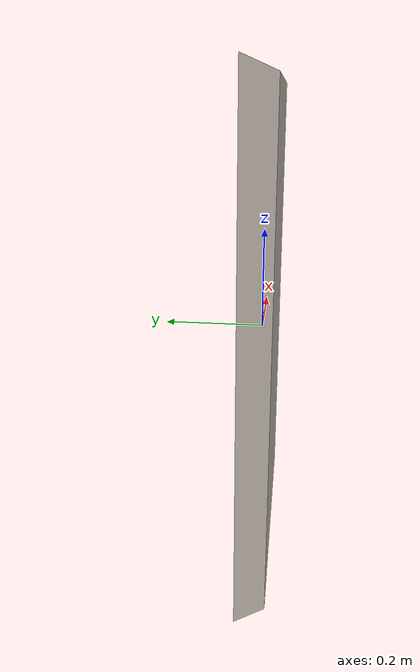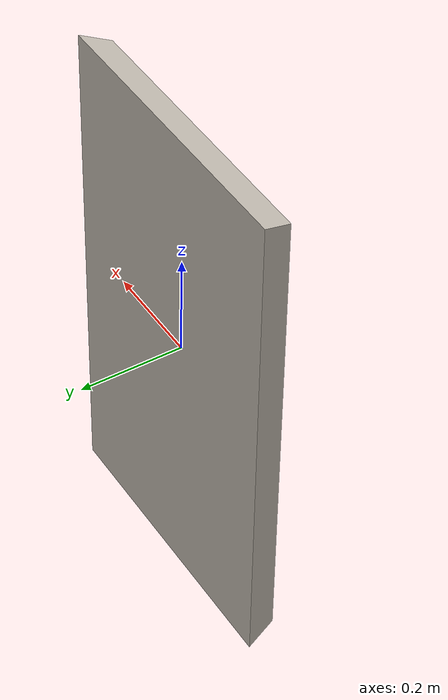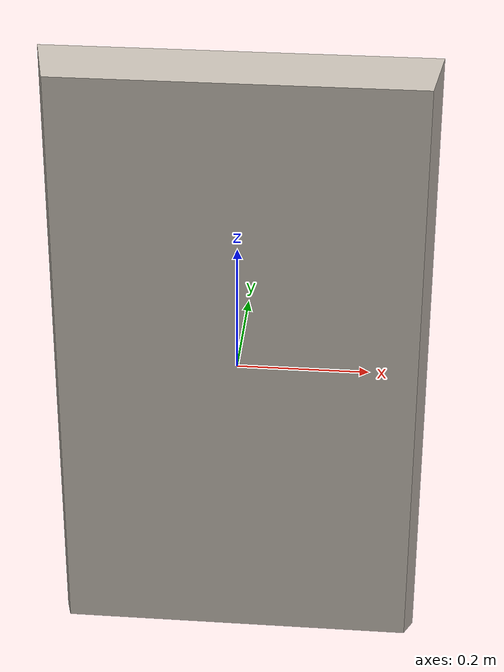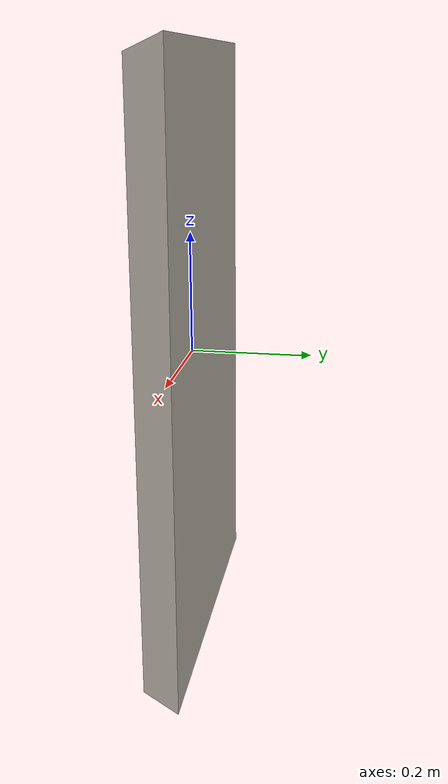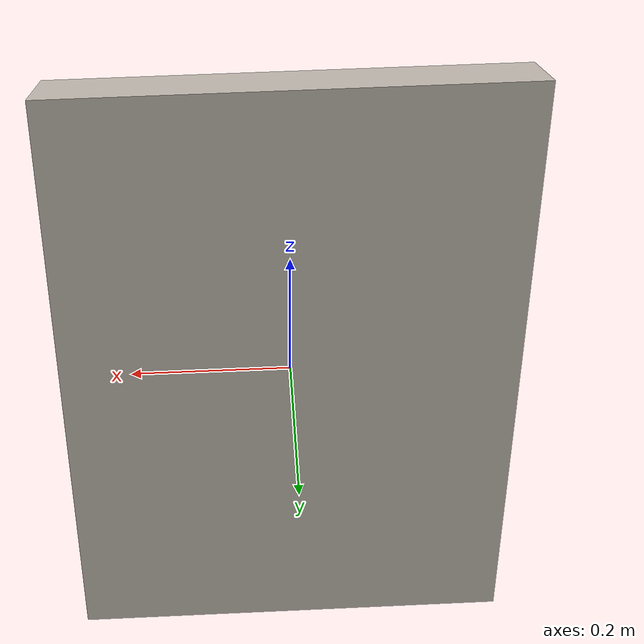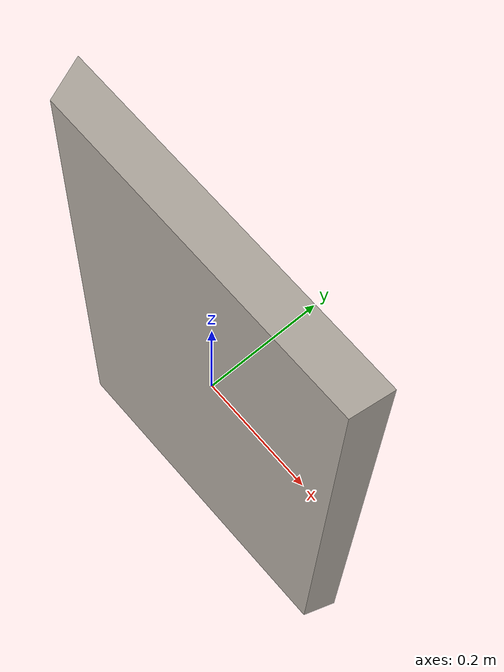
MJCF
<mujoco model="outlet">
  <compiler angle="radian"/>
  <asset>
    <texture file="visuals/material_0.png" name="tex-outlet" type="2d"/>
    <texture type="2d" name="image0" file="visuals/image0.png"/>
    <material name="outlet" reflectance="0.5" texrepeat="1 1" texture="tex-outlet" texuniform="false"/>
    <mesh file="visuals/outlet_0.obj" name="outlet_0_vis" scale="1 1 1"/>
  </asset>
  <default>
    <default class="visual">
      <geom conaffinity="0" contype="0" group="1" type="mesh"/>
    </default>
    <default class="collision">
      <geom group="0" rgba="0.5 0 0 0.5"/>
    </default>
    <default class="region">
      <geom group="1" conaffinity="0" contype="0" rgba="0 1 0 0"/>
    </default>
  </default>
  <worldbody>
    <body>
      <!-- exterior bounding box points -->
      <!-- interior bounding box points -->
      <body name="object">
        <geom solimp="0.998 0.998 0.001" solref="0.001 1" density="100" friction="0.95 0.3 0.1" type="mesh" mesh="outlet_0_vis" material="outlet" class="visual"/>
        <geom class="region" name="reg_main" type="box" pos="0.0 0.0 0.0" size="0.0001 0.0001 0.0001"/>
        <geom class="region" name="reg_int" type="box" pos="0.0 0.0 0.0" size="0.0001 0.0001 0.0001"/>
      </body>
    </body>
  </worldbody>
</mujoco>
